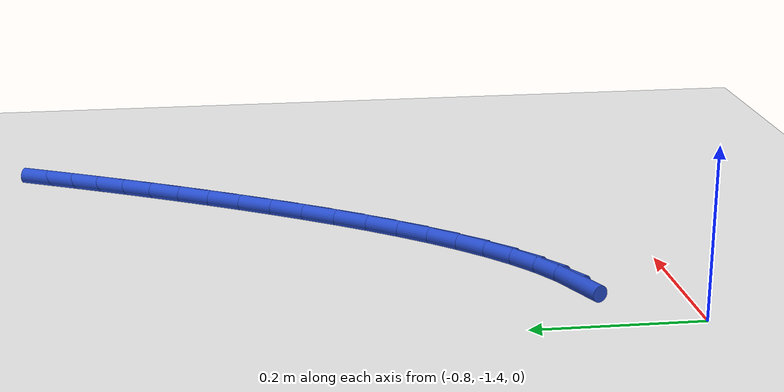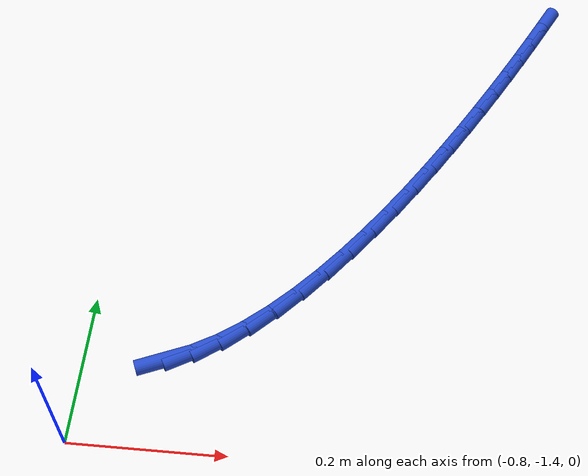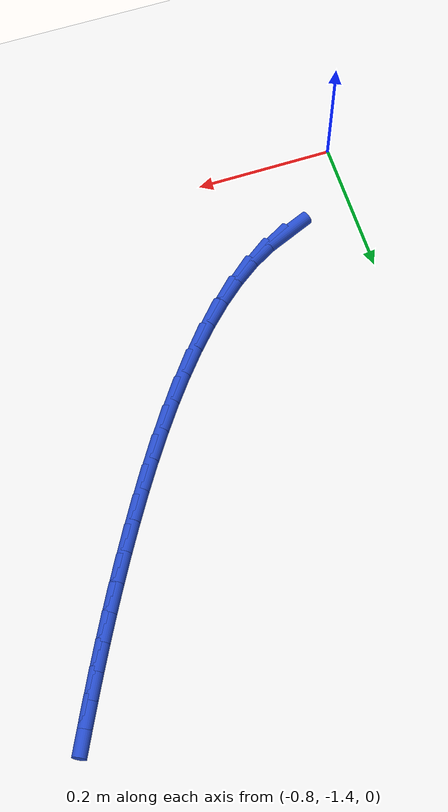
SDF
<sdf version="1.6">
 <world name="default">
  <model name="ground_plane">
   <static>1</static>
   <link name="link">
    <collision name="collision">
     <geometry><plane><normal>0 0 1</normal><size>100 100</size></plane></geometry>
     <surface><friction><ode><mu>100</mu><mu2>50</mu2></ode></friction></surface>
    </collision>
    <visual name="visual">
     <cast_shadows>0</cast_shadows>
     <geometry><plane><normal>0 0 1</normal><size>100 100</size></plane></geometry>
     <material>
      <script><uri>file://media/materials/scripts/gazebo.material</uri><name>Gazebo/WhiteGlow</name></script>
     </material>
    </visual>
   </link>
  </model>
  <model name="line">
   <link name="link_191">
    <pose>-0.694679496956751 -1.2822897741183137 0.01 0 1.57 0.3999337447584273</pose>
    <collision name="collision">
     <geometry><cylinder><radius>0.01</radius><length>0.08</length></cylinder></geometry>
    </collision>
    <visual name="visual">
     <material>
      <script><name>Gazebo/Blue</name><uri>file://media/materials/scripts/gazebo.material</uri></script>
     </material>
     <geometry><cylinder><radius>0.01</radius><length>0.08</length></cylinder></geometry>
    </visual>
   </link>
   <link name="link_192">
    <pose>-0.663426600874937 -1.2690787023292458 0.01 0 1.57 0.5236472981660781</pose>
    <collision name="collision">
     <geometry><cylinder><radius>0.01</radius><length>0.08</length></cylinder></geometry>
    </collision>
    <visual name="visual">
     <material>
      <script><name>Gazebo/Blue</name><uri>file://media/materials/scripts/gazebo.material</uri></script>
     </material>
     <geometry><cylinder><radius>0.01</radius><length>0.08</length></cylinder></geometry>
    </visual>
   </link>
   <link name="link_193">
    <pose>-0.6324828067628283 -1.2512112924496548 0.01 0 1.57 0.6248928788211842</pose>
    <collision name="collision">
     <geometry><cylinder><radius>0.01</radius><length>0.08</length></cylinder></geometry>
    </collision>
    <visual name="visual">
     <material>
      <script><name>Gazebo/Blue</name><uri>file://media/materials/scripts/gazebo.material</uri></script>
     </material>
     <geometry><cylinder><radius>0.01</radius><length>0.08</length></cylinder></geometry>
    </visual>
   </link>
   <link name="link_194">
    <pose>-0.6019336790706097 -1.2291755476528496 0.01 0 1.57 0.7075274005491209</pose>
    <collision name="collision">
     <geometry><cylinder><radius>0.01</radius><length>0.08</length></cylinder></geometry>
    </collision>
    <visual name="visual">
     <material>
      <script><name>Gazebo/Blue</name><uri>file://media/materials/scripts/gazebo.material</uri></script>
     </material>
     <geometry><cylinder><radius>0.01</radius><length>0.08</length></cylinder></geometry>
    </visual>
   </link>
   <link name="link_195">
    <pose>-0.5718647822484665 -1.2034594711121398 0.01 0 1.57 0.775217363784204</pose>
    <collision name="collision">
     <geometry><cylinder><radius>0.01</radius><length>0.08</length></cylinder></geometry>
    </collision>
    <visual name="visual">
     <material>
      <script><name>Gazebo/Blue</name><uri>file://media/materials/scripts/gazebo.material</uri></script>
     </material>
     <geometry><cylinder><radius>0.01</radius><length>0.08</length></cylinder></geometry>
    </visual>
   </link>
   <link name="link_196">
    <pose>-0.5423616807465845 -1.1745510660008351 0.01 0 1.57 0.8310294586802982</pose>
    <collision name="collision">
     <geometry><cylinder><radius>0.01</radius><length>0.08</length></cylinder></geometry>
    </collision>
    <visual name="visual">
     <material>
      <script><name>Gazebo/Blue</name><uri>file://media/materials/scripts/gazebo.material</uri></script>
     </material>
     <geometry><cylinder><radius>0.01</radius><length>0.08</length></cylinder></geometry>
    </visual>
   </link>
   <link name="link_197">
    <pose>-0.5135099390151481 -1.1429383354922436 0.01 0 1.57 0.8773864175017944</pose>
    <collision name="collision">
     <geometry><cylinder><radius>0.01</radius><length>0.08</length></cylinder></geometry>
    </collision>
    <visual name="visual">
     <material>
      <script><name>Gazebo/Blue</name><uri>file://media/materials/scripts/gazebo.material</uri></script>
     </material>
     <geometry><cylinder><radius>0.01</radius><length>0.08</length></cylinder></geometry>
    </visual>
   </link>
   <link name="link_198">
    <pose>-0.48539512150434433 -1.109109282759676 0.01 0 1.57 0.9161527613710213</pose>
    <collision name="collision">
     <geometry><cylinder><radius>0.01</radius><length>0.08</length></cylinder></geometry>
    </collision>
    <visual name="visual">
     <material>
      <script><name>Gazebo/Blue</name><uri>file://media/materials/scripts/gazebo.material</uri></script>
     </material>
     <geometry><cylinder><radius>0.01</radius><length>0.08</length></cylinder></geometry>
    </visual>
   </link>
   <link name="link_199">
    <pose>-0.45810279266435805 -1.073551910976441 0.01 0 1.57 0.9487458610421049</pose>
    <collision name="collision">
     <geometry><cylinder><radius>0.01</radius><length>0.08</length></cylinder></geometry>
    </collision>
    <visual name="visual">
     <material>
      <script><name>Gazebo/Blue</name><uri>file://media/materials/scripts/gazebo.material</uri></script>
     </material>
     <geometry><cylinder><radius>0.01</radius><length>0.08</length></cylinder></geometry>
    </visual>
   </link>
   <link name="link_200">
    <pose>-0.4317185169453747 -1.0367542233158487 0.01 0 1.57 0.9762346477986825</pose>
    <collision name="collision">
     <geometry><cylinder><radius>0.01</radius><length>0.08</length></cylinder></geometry>
    </collision>
    <visual name="visual">
     <material>
      <script><name>Gazebo/Blue</name><uri>file://media/materials/scripts/gazebo.material</uri></script>
     </material>
     <geometry><cylinder><radius>0.01</radius><length>0.08</length></cylinder></geometry>
    </visual>
   </link>
   <link name="link_201">
    <pose>-0.40632785879757927 -0.9992042229512066 0.01 0 1.57 0.9994162426347983</pose>
    <collision name="collision">
     <geometry><cylinder><radius>0.01</radius><length>0.08</length></cylinder></geometry>
    </collision>
    <visual name="visual">
     <material>
      <script><name>Gazebo/Blue</name><uri>file://media/materials/scripts/gazebo.material</uri></script>
     </material>
     <geometry><cylinder><radius>0.01</radius><length>0.08</length></cylinder></geometry>
    </visual>
   </link>
   <link name="link_202">
    <pose>-0.3820163826711583 -0.9613899130558261 0.01 0 1.57 1.0188704308798953</pose>
    <collision name="collision">
     <geometry><cylinder><radius>0.01</radius><length>0.08</length></cylinder></geometry>
    </collision>
    <visual name="visual">
     <material>
      <script><name>Gazebo/Blue</name><uri>file://media/materials/scripts/gazebo.material</uri></script>
     </material>
     <geometry><cylinder><radius>0.01</radius><length>0.08</length></cylinder></geometry>
    </visual>
   </link>
   <link name="link_203">
    <pose>-0.3588696530162967 -0.9237992968030159 0.01 0 1.57 1.0349939036556686</pose>
    <collision name="collision">
     <geometry><cylinder><radius>0.01</radius><length>0.08</length></cylinder></geometry>
    </collision>
    <visual name="visual">
     <material>
      <script><name>Gazebo/Blue</name><uri>file://media/materials/scripts/gazebo.material</uri></script>
     </material>
     <geometry><cylinder><radius>0.01</radius><length>0.08</length></cylinder></geometry>
    </visual>
   </link>
   <link name="link_204">
    <pose>-0.33697323428317993 -0.886920377366085 0.01 0 1.57 1.048422171452502</pose>
    <collision name="collision">
     <geometry><cylinder><radius>0.01</radius><length>0.08</length></cylinder></geometry>
    </collision>
    <visual name="visual">
     <material>
      <script><name>Gazebo/Blue</name><uri>file://media/materials/scripts/gazebo.material</uri></script>
     </material>
     <geometry><cylinder><radius>0.01</radius><length>0.08</length></cylinder></geometry>
    </visual>
   </link>
   <link name="link_205">
    <pose>-0.31637447045338535 -0.851141154655375 0.01 0 1.57 1.0608588465900863</pose>
    <collision name="collision">
     <geometry><cylinder><radius>0.01</radius><length>0.08</length></cylinder></geometry>
    </collision>
    <visual name="visual">
     <material>
      <script><name>Gazebo/Blue</name><uri>file://media/materials/scripts/gazebo.material</uri></script>
     </material>
     <geometry><cylinder><radius>0.01</radius><length>0.08</length></cylinder></geometry>
    </visual>
   </link>
   <link name="link_206">
    <pose>-0.2969581558217618 -0.8164243198485216 0.01 0 1.57 1.0725150599506283</pose>
    <collision name="collision">
     <geometry><cylinder><radius>0.01</radius><length>0.08</length></cylinder></geometry>
    </collision>
    <visual name="visual">
     <material>
      <script><name>Gazebo/Blue</name><uri>file://media/materials/scripts/gazebo.material</uri></script>
     </material>
     <geometry><cylinder><radius>0.01</radius><length>0.08</length></cylinder></geometry>
    </visual>
   </link>
   <link name="link_207">
    <pose>-0.2785658794027592 -0.7826195181774999 0.01 0 1.57 1.0831119033514336</pose>
    <collision name="collision">
     <geometry><cylinder><radius>0.01</radius><length>0.08</length></cylinder></geometry>
    </collision>
    <visual name="visual">
     <material>
      <script><name>Gazebo/Blue</name><uri>file://media/materials/scripts/gazebo.material</uri></script>
     </material>
     <geometry><cylinder><radius>0.01</radius><length>0.08</length></cylinder></geometry>
    </visual>
   </link>
   <link name="link_208">
    <pose>-0.26103922986386263 -0.7495763939664583 0.01 0 1.57 1.0923723612705483</pose>
    <collision name="collision">
     <geometry><cylinder><radius>0.01</radius><length>0.08</length></cylinder></geometry>
    </collision>
    <visual name="visual">
     <material>
      <script><name>Gazebo/Blue</name><uri>file://media/materials/scripts/gazebo.material</uri></script>
     </material>
     <geometry><cylinder><radius>0.01</radius><length>0.08</length></cylinder></geometry>
    </visual>
   </link>
   <link name="link_209">
    <pose>-0.244219795872558 -0.7171445915395473 0.01 0 1.57 1.1000374193886573</pose>
    <collision name="collision">
     <geometry><cylinder><radius>0.01</radius><length>0.08</length></cylinder></geometry>
    </collision>
    <visual name="visual">
     <material>
      <script><name>Gazebo/Blue</name><uri>file://media/materials/scripts/gazebo.material</uri></script>
     </material>
     <geometry><cylinder><radius>0.01</radius><length>0.08</length></cylinder></geometry>
    </visual>
   </link>
   <link name="link_210">
    <pose>-0.22794916609633067 -0.6851737552209161 0.01 0 1.57 1.1058829731486968</pose>
    <collision name="collision">
     <geometry><cylinder><radius>0.01</radius><length>0.08</length></cylinder></geometry>
    </collision>
    <visual name="visual">
     <material>
      <script><name>Gazebo/Blue</name><uri>file://media/materials/scripts/gazebo.material</uri></script>
     </material>
     <geometry><cylinder><radius>0.01</radius><length>0.08</length></cylinder></geometry>
    </visual>
   </link>
  </model>
 </world>
</sdf>
